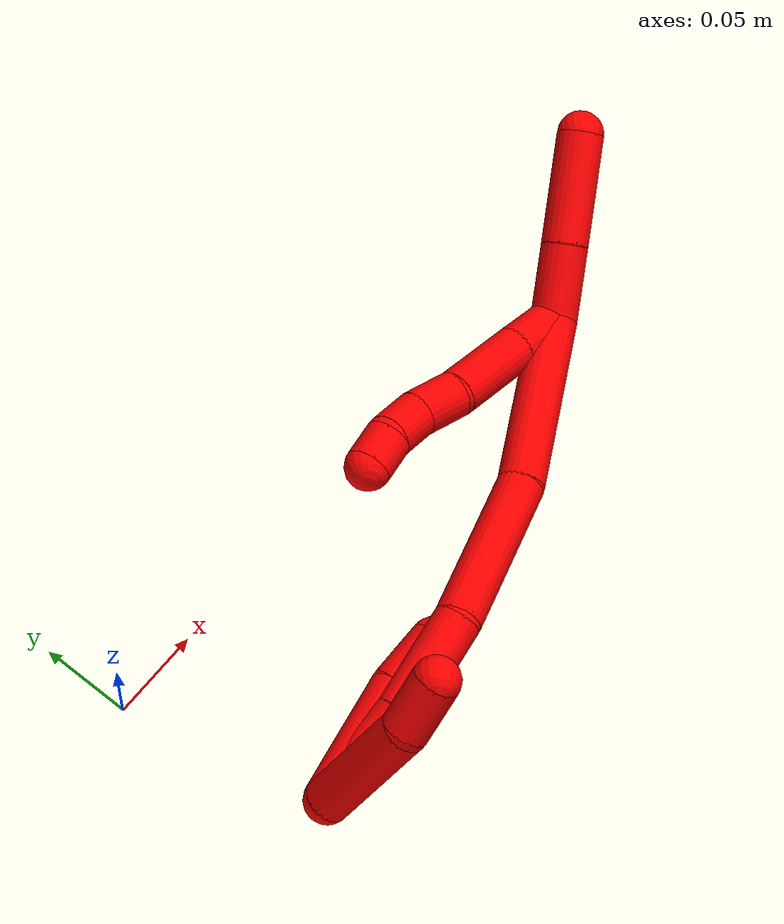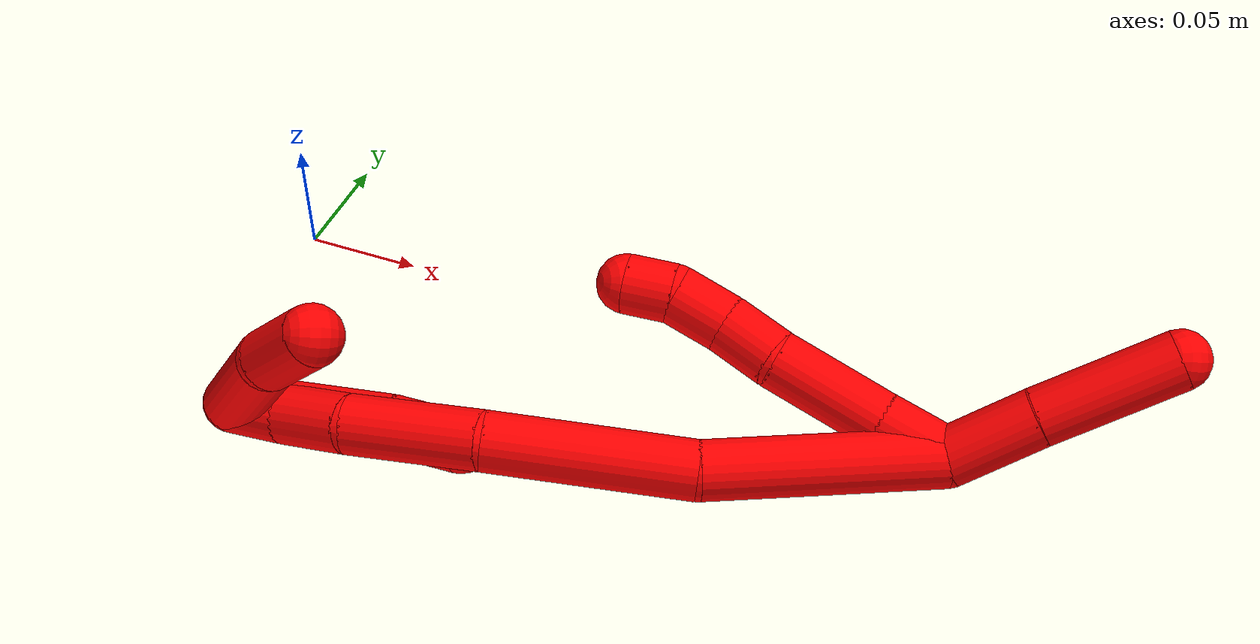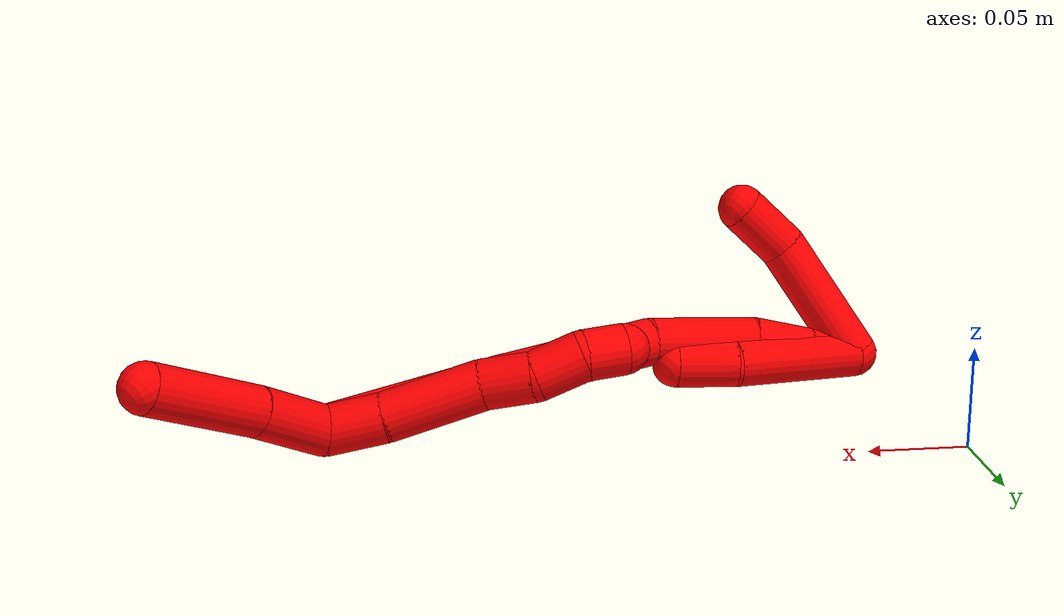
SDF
<sdf version="1.7">
 <world name="default">
  <model name="2">
   <static>0</static>
   <link name="2">
    <collision name="collision-cylinder-e_1_2_8">
     <pose>-0.006293 -0.008594 -0.010582 2.4595 -0.432462 -1.10844</pose>
     <geometry><cylinder><radius>0.0125</radius><length>0.03003</length></cylinder></geometry>
     <surface>
      <friction><ode><mu>1.16</mu><mu2>1.16</mu2><slip1>0</slip1><slip2>0</slip2></ode></friction>
      <contact><ode><kp>1e+06</kp><kd>1</kd><max_vel>0</max_vel><min_depth>0.001</min_depth></ode></contact>
     </surface>
    </collision>
    <visual name="visual-cylinder-e_1_2_8">
     <pose>-0.006293 -0.008594 -0.010582 2.4595 -0.432462 -1.10844</pose>
     <geometry><cylinder><radius>0.0125</radius><length>0.03003</length></cylinder></geometry>
     <material><ambient>1 0 0 1</ambient></material>
    </visual>
    <collision name="collision-cylinder-e_2_8_9">
     <pose>-0.020555 -0.031341 -0.039755 2.49091 -0.32873 -0.913955</pose>
     <geometry><cylinder><radius>0.0125</radius><length>0.049372</length></cylinder></geometry>
     <surface>
      <friction><ode><mu>1.16</mu><mu2>1.16</mu2><slip1>0</slip1><slip2>0</slip2></ode></friction>
      <contact><ode><kp>1e+06</kp><kd>1</kd><max_vel>0</max_vel><min_depth>0.001</min_depth></ode></contact>
     </surface>
    </collision>
    <visual name="visual-cylinder-e_2_8_9">
     <pose>-0.020555 -0.031341 -0.039755 2.49091 -0.32873 -0.913955</pose>
     <geometry><cylinder><radius>0.0125</radius><length>0.049372</length></cylinder></geometry>
     <material><ambient>1 0 0 1</ambient></material>
    </visual>
    <collision name="collision-cylinder-e_3_9_10">
     <pose>-0.034383 -0.05399 -0.06596 2.30154 -0.474337 -0.992174</pose>
     <geometry><cylinder><radius>0.0125</radius><length>0.025651</length></cylinder></geometry>
     <surface>
      <friction><ode><mu>1.16</mu><mu2>1.16</mu2><slip1>0</slip1><slip2>0</slip2></ode></friction>
      <contact><ode><kp>1e+06</kp><kd>1</kd><max_vel>0</max_vel><min_depth>0.001</min_depth></ode></contact>
     </surface>
    </collision>
    <visual name="visual-cylinder-e_3_9_10">
     <pose>-0.034383 -0.05399 -0.06596 2.30154 -0.474337 -0.992174</pose>
     <geometry><cylinder><radius>0.0125</radius><length>0.025651</length></cylinder></geometry>
     <material><ambient>1 0 0 1</ambient></material>
    </visual>
    <collision name="collision-cylinder-e_4_10_11">
     <pose>-0.043247 -0.069258 -0.083477 2.54175 -0.245504 -0.759191</pose>
     <geometry><cylinder><radius>0.0125</radius><length>0.024732</length></cylinder></geometry>
     <surface>
      <friction><ode><mu>1.16</mu><mu2>1.16</mu2><slip1>0</slip1><slip2>0</slip2></ode></friction>
      <contact><ode><kp>1e+06</kp><kd>1</kd><max_vel>0</max_vel><min_depth>0.001</min_depth></ode></contact>
     </surface>
    </collision>
    <visual name="visual-cylinder-e_4_10_11">
     <pose>-0.043247 -0.069258 -0.083477 2.54175 -0.245504 -0.759191</pose>
     <geometry><cylinder><radius>0.0125</radius><length>0.024732</length></cylinder></geometry>
     <material><ambient>1 0 0 1</ambient></material>
    </visual>
    <collision name="collision-cylinder-e_5_11_6">
     <pose>-0.051081 -0.079066 -0.101722 2.79261 -0.498067 -1.92932</pose>
     <geometry><cylinder><radius>0.0125</radius><length>0.020214</length></cylinder></geometry>
     <surface>
      <friction><ode><mu>1.16</mu><mu2>1.16</mu2><slip1>0</slip1><slip2>0</slip2></ode></friction>
      <contact><ode><kp>1e+06</kp><kd>1</kd><max_vel>0</max_vel><min_depth>0.001</min_depth></ode></contact>
     </surface>
    </collision>
    <visual name="visual-cylinder-e_5_11_6">
     <pose>-0.051081 -0.079066 -0.101722 2.79261 -0.498067 -1.92932</pose>
     <geometry><cylinder><radius>0.0125</radius><length>0.020214</length></cylinder></geometry>
     <material><ambient>1 0 0 1</ambient></material>
    </visual>
    <collision name="collision-cylinder-e_1_2_12">
     <pose>0.013578 -0.005819 0.013652 0.402902 0.740985 0.15832</pose>
     <geometry><cylinder><radius>0.0125</radius><length>0.040229</length></cylinder></geometry>
     <surface>
      <friction><ode><mu>1.16</mu><mu2>1.16</mu2><slip1>0</slip1><slip2>0</slip2></ode></friction>
      <contact><ode><kp>1e+06</kp><kd>1</kd><max_vel>0</max_vel><min_depth>0.001</min_depth></ode></contact>
     </surface>
    </collision>
    <visual name="visual-cylinder-e_1_2_12">
     <pose>0.013578 -0.005819 0.013652 0.402902 0.740985 0.15832</pose>
     <geometry><cylinder><radius>0.0125</radius><length>0.040229</length></cylinder></geometry>
     <material><ambient>1 0 0 1</ambient></material>
    </visual>
    <collision name="collision-cylinder-e_2_12_5">
     <pose>0.046271 -0.019561 0.048868 0.35213 0.694003 0.128498</pose>
     <geometry><cylinder><radius>0.0125</radius><length>0.059771</length></cylinder></geometry>
     <surface>
      <friction><ode><mu>1.16</mu><mu2>1.16</mu2><slip1>0</slip1><slip2>0</slip2></ode></friction>
      <contact><ode><kp>1e+06</kp><kd>1</kd><max_vel>0</max_vel><min_depth>0.001</min_depth></ode></contact>
     </surface>
    </collision>
    <visual name="visual-cylinder-e_2_12_5">
     <pose>0.046271 -0.019561 0.048868 0.35213 0.694003 0.128498</pose>
     <geometry><cylinder><radius>0.0125</radius><length>0.059771</length></cylinder></geometry>
     <material><ambient>1 0 0 1</ambient></material>
    </visual>
    <collision name="collision-cylinder-e_1_2_13">
     <pose>-0.01748 -0.000251 -0.047135 3.13627 -0.355114 -3.11196</pose>
     <geometry><cylinder><radius>0.0125</radius><length>0.100545</length></cylinder></geometry>
     <surface>
      <friction><ode><mu>1.16</mu><mu2>1.16</mu2><slip1>0</slip1><slip2>0</slip2></ode></friction>
      <contact><ode><kp>1e+06</kp><kd>1</kd><max_vel>0</max_vel><min_depth>0.001</min_depth></ode></contact>
     </surface>
    </collision>
    <visual name="visual-cylinder-e_1_2_13">
     <pose>-0.01748 -0.000251 -0.047135 3.13627 -0.355114 -3.11196</pose>
     <geometry><cylinder><radius>0.0125</radius><length>0.100545</length></cylinder></geometry>
     <material><ambient>1 0 0 1</ambient></material>
    </visual>
    <collision name="collision-cylinder-e_2_13_14">
     <pose>-0.052224 -0.009384 -0.132808 2.91506 -0.411614 -2.14377</pose>
     <geometry><cylinder><radius>0.0125</radius><length>0.086305</length></cylinder></geometry>
     <surface>
      <friction><ode><mu>1.16</mu><mu2>1.16</mu2><slip1>0</slip1><slip2>0</slip2></ode></friction>
      <contact><ode><kp>1e+06</kp><kd>1</kd><max_vel>0</max_vel><min_depth>0.001</min_depth></ode></contact>
     </surface>
    </collision>
    <visual name="visual-cylinder-e_2_13_14">
     <pose>-0.052224 -0.009384 -0.132808 2.91506 -0.411614 -2.14377</pose>
     <geometry><cylinder><radius>0.0125</radius><length>0.086305</length></cylinder></geometry>
     <material><ambient>1 0 0 1</ambient></material>
    </visual>
    <collision name="collision-cylinder-e_3_14_15">
     <pose>-0.086483 -0.024725 -0.19331 2.85559 -0.63853 -2.32004</pose>
     <geometry><cylinder><radius>0.0125</radius><length>0.057024</length></cylinder></geometry>
     <surface>
      <friction><ode><mu>1.16</mu><mu2>1.16</mu2><slip1>0</slip1><slip2>0</slip2></ode></friction>
      <contact><ode><kp>1e+06</kp><kd>1</kd><max_vel>0</max_vel><min_depth>0.001</min_depth></ode></contact>
     </surface>
    </collision>
    <visual name="visual-cylinder-e_3_14_15">
     <pose>-0.086483 -0.024725 -0.19331 2.85559 -0.63853 -2.32004</pose>
     <geometry><cylinder><radius>0.0125</radius><length>0.057024</length></cylinder></geometry>
     <material><ambient>1 0 0 1</ambient></material>
    </visual>
    <collision name="collision-cylinder-e_4_15_16">
     <pose>-0.115181 -0.035477 -0.224746 2.71604 -0.844424 -2.24504</pose>
     <geometry><cylinder><radius>0.0125</radius><length>0.031314</length></cylinder></geometry>
     <surface>
      <friction><ode><mu>1.16</mu><mu2>1.16</mu2><slip1>0</slip1><slip2>0</slip2></ode></friction>
      <contact><ode><kp>1e+06</kp><kd>1</kd><max_vel>0</max_vel><min_depth>0.001</min_depth></ode></contact>
     </surface>
    </collision>
    <visual name="visual-cylinder-e_4_15_16">
     <pose>-0.115181 -0.035477 -0.224746 2.71604 -0.844424 -2.24504</pose>
     <geometry><cylinder><radius>0.0125</radius><length>0.031314</length></cylinder></geometry>
     <material><ambient>1 0 0 1</ambient></material>
    </visual>
    <collision name="collision-cylinder-e_5_16_1">
     <pose>-0.134778 -0.04364 -0.242973 2.72536 -0.68945 -2.07831</pose>
     <geometry><cylinder><radius>0.0125</radius><length>0.024812</length></cylinder></geometry>
     <surface>
      <friction><ode><mu>1.16</mu><mu2>1.16</mu2><slip1>0</slip1><slip2>0</slip2></ode></friction>
      <contact><ode><kp>1e+06</kp><kd>1</kd><max_vel>0</max_vel><min_depth>0.001</min_depth></ode></contact>
     </surface>
    </collision>
    <visual name="visual-cylinder-e_5_16_1">
     <pose>-0.134778 -0.04364 -0.242973 2.72536 -0.68945 -2.07831</pose>
     <geometry><cylinder><radius>0.0125</radius><length>0.024812</length></cylinder></geometry>
     <material><ambient>1 0 0 1</ambient></material>
    </visual>
    <collision name="collision-cylinder-e_1_1_17">
     <pose>-0.108463 -0.048557 -0.253629 2.63851 1.50745 2.60709</pose>
     <geometry><cylinder><radius>0.0125</radius><length>0.068551</length></cylinder></geometry>
     <surface>
      <friction><ode><mu>1.16</mu><mu2>1.16</mu2><slip1>0</slip1><slip2>0</slip2></ode></friction>
      <contact><ode><kp>1e+06</kp><kd>1</kd><max_vel>0</max_vel><min_depth>0.001</min_depth></ode></contact>
     </surface>
    </collision>
    <visual name="visual-cylinder-e_1_1_17">
     <pose>-0.108463 -0.048557 -0.253629 2.63851 1.50745 2.60709</pose>
     <geometry><cylinder><radius>0.0125</radius><length>0.068551</length></cylinder></geometry>
     <material><ambient>1 0 0 1</ambient></material>
    </visual>
    <collision name="collision-cylinder-e_2_17_4">
     <pose>-0.059191 -0.050911 -0.251216 0.294346 1.28002 0.219864</pose>
     <geometry><cylinder><radius>0.0125</radius><length>0.031449</length></cylinder></geometry>
     <surface>
      <friction><ode><mu>1.16</mu><mu2>1.16</mu2><slip1>0</slip1><slip2>0</slip2></ode></friction>
      <contact><ode><kp>1e+06</kp><kd>1</kd><max_vel>0</max_vel><min_depth>0.001</min_depth></ode></contact>
     </surface>
    </collision>
    <visual name="visual-cylinder-e_2_17_4">
     <pose>-0.059191 -0.050911 -0.251216 0.294346 1.28002 0.219864</pose>
     <geometry><cylinder><radius>0.0125</radius><length>0.031449</length></cylinder></geometry>
     <material><ambient>1 0 0 1</ambient></material>
    </visual>
    <collision name="collision-cylinder-e_1_1_18">
     <pose>-0.124329 -0.03965 -0.224096 -0.277141 0.568198 -0.081402</pose>
     <geometry><cylinder><radius>0.0125</radius><length>0.068166</length></cylinder></geometry>
     <surface>
      <friction><ode><mu>1.16</mu><mu2>1.16</mu2><slip1>0</slip1><slip2>0</slip2></ode></friction>
      <contact><ode><kp>1e+06</kp><kd>1</kd><max_vel>0</max_vel><min_depth>0.001</min_depth></ode></contact>
     </surface>
    </collision>
    <visual name="visual-cylinder-e_1_1_18">
     <pose>-0.124329 -0.03965 -0.224096 -0.277141 0.568198 -0.081402</pose>
     <geometry><cylinder><radius>0.0125</radius><length>0.068166</length></cylinder></geometry>
     <material><ambient>1 0 0 1</ambient></material>
    </visual>
    <collision name="collision-cylinder-e_2_18_3">
     <pose>-0.096286 -0.026209 -0.185148 -0.458171 0.655531 -0.158244</pose>
     <geometry><cylinder><radius>0.0125</radius><length>0.031834</length></cylinder></geometry>
     <surface>
      <friction><ode><mu>1.16</mu><mu2>1.16</mu2><slip1>0</slip1><slip2>0</slip2></ode></friction>
      <contact><ode><kp>1e+06</kp><kd>1</kd><max_vel>0</max_vel><min_depth>0.001</min_depth></ode></contact>
     </surface>
    </collision>
    <visual name="visual-cylinder-e_2_18_3">
     <pose>-0.096286 -0.026209 -0.185148 -0.458171 0.655531 -0.158244</pose>
     <geometry><cylinder><radius>0.0125</radius><length>0.031834</length></cylinder></geometry>
     <material><ambient>1 0 0 1</ambient></material>
    </visual>
    <collision name="collision-sphere-3">
     <pose>-0.086583 -0.020628 -0.173832 0 -0 0</pose>
     <geometry><sphere><radius>0.0125</radius></sphere></geometry>
     <surface>
      <friction><ode><mu>1.16</mu><mu2>1.16</mu2><slip1>0</slip1><slip2>0</slip2></ode></friction>
      <contact><ode><kp>1e+06</kp><kd>1</kd><max_vel>0</max_vel><min_depth>0.001</min_depth></ode></contact>
     </surface>
    </collision>
    <visual name="visual-sphere-3">
     <pose>-0.086583 -0.020628 -0.173832 0 -0 0</pose>
     <geometry><sphere><radius>0.0125</radius></sphere></geometry>
     <material><ambient>1 0 0 1</ambient></material>
    </visual>
    <collision name="collision-sphere-6">
     <pose>-0.055909 -0.082102 -0.110066 0 -0 0</pose>
     <geometry><sphere><radius>0.0125</radius></sphere></geometry>
     <surface>
      <friction><ode><mu>1.16</mu><mu2>1.16</mu2><slip1>0</slip1><slip2>0</slip2></ode></friction>
      <contact><ode><kp>1e+06</kp><kd>1</kd><max_vel>0</max_vel><min_depth>0.001</min_depth></ode></contact>
     </surface>
    </collision>
    <visual name="visual-sphere-6">
     <pose>-0.055909 -0.082102 -0.110066 0 -0 0</pose>
     <geometry><sphere><radius>0.0125</radius></sphere></geometry>
     <material><ambient>1 0 0 1</ambient></material>
    </visual>
    <collision name="collision-sphere-11">
     <pose>-0.046252 -0.07603 -0.093378 0 -0 0</pose>
     <geometry><sphere><radius>0.0125</radius></sphere></geometry>
     <surface>
      <friction><ode><mu>1.16</mu><mu2>1.16</mu2><slip1>0</slip1><slip2>0</slip2></ode></friction>
      <contact><ode><kp>1e+06</kp><kd>1</kd><max_vel>0</max_vel><min_depth>0.001</min_depth></ode></contact>
     </surface>
    </collision>
    <visual name="visual-sphere-11">
     <pose>-0.046252 -0.07603 -0.093378 0 -0 0</pose>
     <geometry><sphere><radius>0.0125</radius></sphere></geometry>
     <material><ambient>1 0 0 1</ambient></material>
    </visual>
    <collision name="collision-sphere-10">
     <pose>-0.040241 -0.062487 -0.073575 0 -0 0</pose>
     <geometry><sphere><radius>0.0125</radius></sphere></geometry>
     <surface>
      <friction><ode><mu>1.16</mu><mu2>1.16</mu2><slip1>0</slip1><slip2>0</slip2></ode></friction>
      <contact><ode><kp>1e+06</kp><kd>1</kd><max_vel>0</max_vel><min_depth>0.001</min_depth></ode></contact>
     </surface>
    </collision>
    <visual name="visual-sphere-10">
     <pose>-0.040241 -0.062487 -0.073575 0 -0 0</pose>
     <geometry><sphere><radius>0.0125</radius></sphere></geometry>
     <material><ambient>1 0 0 1</ambient></material>
    </visual>
    <collision name="collision-sphere-9">
     <pose>-0.028525 -0.045493 -0.058345 0 -0 0</pose>
     <geometry><sphere><radius>0.0125</radius></sphere></geometry>
     <surface>
      <friction><ode><mu>1.16</mu><mu2>1.16</mu2><slip1>0</slip1><slip2>0</slip2></ode></friction>
      <contact><ode><kp>1e+06</kp><kd>1</kd><max_vel>0</max_vel><min_depth>0.001</min_depth></ode></contact>
     </surface>
    </collision>
    <visual name="visual-sphere-9">
     <pose>-0.028525 -0.045493 -0.058345 0 -0 0</pose>
     <geometry><sphere><radius>0.0125</radius></sphere></geometry>
     <material><ambient>1 0 0 1</ambient></material>
    </visual>
    <collision name="collision-sphere-2">
     <geometry><sphere><radius>0.0125</radius></sphere></geometry>
     <surface>
      <friction><ode><mu>1.16</mu><mu2>1.16</mu2><slip1>0</slip1><slip2>0</slip2></ode></friction>
      <contact><ode><kp>1e+06</kp><kd>1</kd><max_vel>0</max_vel><min_depth>0.001</min_depth></ode></contact>
     </surface>
    </collision>
    <visual name="visual-sphere-2">
     <geometry><sphere><radius>0.0125</radius></sphere></geometry>
     <material><ambient>1 0 0 1</ambient></material>
    </visual>
    <collision name="collision-sphere-8">
     <pose>-0.012586 -0.017188 -0.021165 0 -0 0</pose>
     <geometry><sphere><radius>0.0125</radius></sphere></geometry>
     <surface>
      <friction><ode><mu>1.16</mu><mu2>1.16</mu2><slip1>0</slip1><slip2>0</slip2></ode></friction>
      <contact><ode><kp>1e+06</kp><kd>1</kd><max_vel>0</max_vel><min_depth>0.001</min_depth></ode></contact>
     </surface>
    </collision>
    <visual name="visual-sphere-8">
     <pose>-0.012586 -0.017188 -0.021165 0 -0 0</pose>
     <geometry><sphere><radius>0.0125</radius></sphere></geometry>
     <material><ambient>1 0 0 1</ambient></material>
    </visual>
    <collision name="collision-sphere-12">
     <pose>0.027156 -0.011638 0.027305 0 -0 0</pose>
     <geometry><sphere><radius>0.0125</radius></sphere></geometry>
     <surface>
      <friction><ode><mu>1.16</mu><mu2>1.16</mu2><slip1>0</slip1><slip2>0</slip2></ode></friction>
      <contact><ode><kp>1e+06</kp><kd>1</kd><max_vel>0</max_vel><min_depth>0.001</min_depth></ode></contact>
     </surface>
    </collision>
    <visual name="visual-sphere-12">
     <pose>0.027156 -0.011638 0.027305 0 -0 0</pose>
     <geometry><sphere><radius>0.0125</radius></sphere></geometry>
     <material><ambient>1 0 0 1</ambient></material>
    </visual>
    <collision name="collision-sphere-5">
     <pose>0.065386 -0.027484 0.070431 0 -0 0</pose>
     <geometry><sphere><radius>0.0125</radius></sphere></geometry>
     <surface>
      <friction><ode><mu>1.16</mu><mu2>1.16</mu2><slip1>0</slip1><slip2>0</slip2></ode></friction>
      <contact><ode><kp>1e+06</kp><kd>1</kd><max_vel>0</max_vel><min_depth>0.001</min_depth></ode></contact>
     </surface>
    </collision>
    <visual name="visual-sphere-5">
     <pose>0.065386 -0.027484 0.070431 0 -0 0</pose>
     <geometry><sphere><radius>0.0125</radius></sphere></geometry>
     <material><ambient>1 0 0 1</ambient></material>
    </visual>
    <collision name="collision-sphere-13">
     <pose>-0.034959 -0.000501 -0.09427 0 -0 0</pose>
     <geometry><sphere><radius>0.0125</radius></sphere></geometry>
     <surface>
      <friction><ode><mu>1.16</mu><mu2>1.16</mu2><slip1>0</slip1><slip2>0</slip2></ode></friction>
      <contact><ode><kp>1e+06</kp><kd>1</kd><max_vel>0</max_vel><min_depth>0.001</min_depth></ode></contact>
     </surface>
    </collision>
    <visual name="visual-sphere-13">
     <pose>-0.034959 -0.000501 -0.09427 0 -0 0</pose>
     <geometry><sphere><radius>0.0125</radius></sphere></geometry>
     <material><ambient>1 0 0 1</ambient></material>
    </visual>
    <collision name="collision-sphere-14">
     <pose>-0.069489 -0.018266 -0.171346 0 -0 0</pose>
     <geometry><sphere><radius>0.0125</radius></sphere></geometry>
     <surface>
      <friction><ode><mu>1.16</mu><mu2>1.16</mu2><slip1>0</slip1><slip2>0</slip2></ode></friction>
      <contact><ode><kp>1e+06</kp><kd>1</kd><max_vel>0</max_vel><min_depth>0.001</min_depth></ode></contact>
     </surface>
    </collision>
    <visual name="visual-sphere-14">
     <pose>-0.069489 -0.018266 -0.171346 0 -0 0</pose>
     <geometry><sphere><radius>0.0125</radius></sphere></geometry>
     <material><ambient>1 0 0 1</ambient></material>
    </visual>
    <collision name="collision-sphere-15">
     <pose>-0.103476 -0.031184 -0.215275 0 -0 0</pose>
     <geometry><sphere><radius>0.0125</radius></sphere></geometry>
     <surface>
      <friction><ode><mu>1.16</mu><mu2>1.16</mu2><slip1>0</slip1><slip2>0</slip2></ode></friction>
      <contact><ode><kp>1e+06</kp><kd>1</kd><max_vel>0</max_vel><min_depth>0.001</min_depth></ode></contact>
     </surface>
    </collision>
    <visual name="visual-sphere-15">
     <pose>-0.103476 -0.031184 -0.215275 0 -0 0</pose>
     <geometry><sphere><radius>0.0125</radius></sphere></geometry>
     <material><ambient>1 0 0 1</ambient></material>
    </visual>
    <collision name="collision-sphere-16">
     <pose>-0.126886 -0.03977 -0.234218 0 -0 0</pose>
     <geometry><sphere><radius>0.0125</radius></sphere></geometry>
     <surface>
      <friction><ode><mu>1.16</mu><mu2>1.16</mu2><slip1>0</slip1><slip2>0</slip2></ode></friction>
      <contact><ode><kp>1e+06</kp><kd>1</kd><max_vel>0</max_vel><min_depth>0.001</min_depth></ode></contact>
     </surface>
    </collision>
    <visual name="visual-sphere-16">
     <pose>-0.126886 -0.03977 -0.234218 0 -0 0</pose>
     <geometry><sphere><radius>0.0125</radius></sphere></geometry>
     <material><ambient>1 0 0 1</ambient></material>
    </visual>
    <collision name="collision-sphere-1">
     <pose>-0.142669 -0.04751 -0.251728 0 -0 0</pose>
     <geometry><sphere><radius>0.0125</radius></sphere></geometry>
     <surface>
      <friction><ode><mu>1.16</mu><mu2>1.16</mu2><slip1>0</slip1><slip2>0</slip2></ode></friction>
      <contact><ode><kp>1e+06</kp><kd>1</kd><max_vel>0</max_vel><min_depth>0.001</min_depth></ode></contact>
     </surface>
    </collision>
    <visual name="visual-sphere-1">
     <pose>-0.142669 -0.04751 -0.251728 0 -0 0</pose>
     <geometry><sphere><radius>0.0125</radius></sphere></geometry>
     <material><ambient>1 0 0 1</ambient></material>
    </visual>
    <collision name="collision-sphere-18">
     <pose>-0.105988 -0.03179 -0.196465 0 -0 0</pose>
     <geometry><sphere><radius>0.0125</radius></sphere></geometry>
     <surface>
      <friction><ode><mu>1.16</mu><mu2>1.16</mu2><slip1>0</slip1><slip2>0</slip2></ode></friction>
      <contact><ode><kp>1e+06</kp><kd>1</kd><max_vel>0</max_vel><min_depth>0.001</min_depth></ode></contact>
     </surface>
    </collision>
    <visual name="visual-sphere-18">
     <pose>-0.105988 -0.03179 -0.196465 0 -0 0</pose>
     <geometry><sphere><radius>0.0125</radius></sphere></geometry>
     <material><ambient>1 0 0 1</ambient></material>
    </visual>
    <collision name="collision-sphere-17">
     <pose>-0.074256 -0.049603 -0.25553 0 -0 0</pose>
     <geometry><sphere><radius>0.0125</radius></sphere></geometry>
     <surface>
      <friction><ode><mu>1.16</mu><mu2>1.16</mu2><slip1>0</slip1><slip2>0</slip2></ode></friction>
      <contact><ode><kp>1e+06</kp><kd>1</kd><max_vel>0</max_vel><min_depth>0.001</min_depth></ode></contact>
     </surface>
    </collision>
    <visual name="visual-sphere-17">
     <pose>-0.074256 -0.049603 -0.25553 0 -0 0</pose>
     <geometry><sphere><radius>0.0125</radius></sphere></geometry>
     <material><ambient>1 0 0 1</ambient></material>
    </visual>
    <collision name="collision-sphere-4">
     <pose>-0.044127 -0.052219 -0.246901 0 -0 0</pose>
     <geometry><sphere><radius>0.0125</radius></sphere></geometry>
     <surface>
      <friction><ode><mu>1.16</mu><mu2>1.16</mu2><slip1>0</slip1><slip2>0</slip2></ode></friction>
      <contact><ode><kp>1e+06</kp><kd>1</kd><max_vel>0</max_vel><min_depth>0.001</min_depth></ode></contact>
     </surface>
    </collision>
    <visual name="visual-sphere-4">
     <pose>-0.044127 -0.052219 -0.246901 0 -0 0</pose>
     <geometry><sphere><radius>0.0125</radius></sphere></geometry>
     <material><ambient>1 0 0 1</ambient></material>
    </visual>
    <inertial>
     <pose>-0.053147 -0.027747 -0.121828 0 -0 0</pose>
     <mass>0.75</mass>
     <inertia>
      <ixx>-0.000139</ixx>
      <ixy>0</ixy>
      <ixz>0</ixz>
      <iyy>0.000142</iyy>
      <iyz>0</iyz>
      <izz>2.1e-05</izz>
     </inertia>
    </inertial>
   </link>
   <pose>0.308257 -0.034764 0.011496 -2.12978 -0.883377 -0.427724</pose>
  </model>
 </world>
</sdf>
